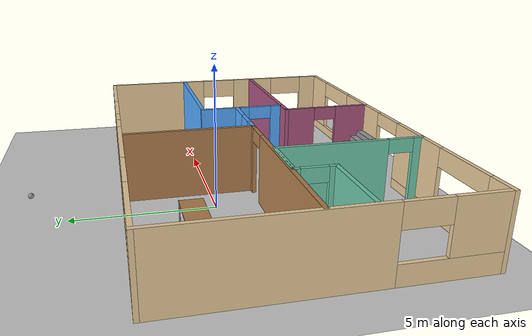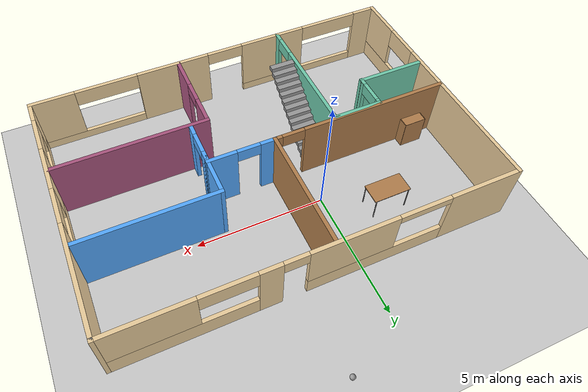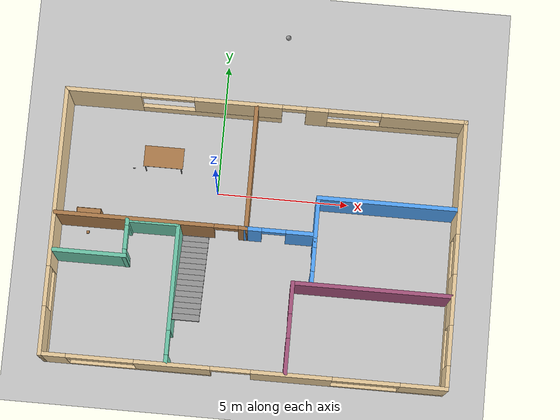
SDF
<sdf version="1.6">
 <world name="default">
  <model name="ground_plane">
   <static>1</static>
   <link name="link">
    <collision name="collision">
     <geometry><plane><normal>0 0 1</normal><size>100 100</size></plane></geometry>
     <surface>
      <contact><collide_bitmask>65535</collide_bitmask></contact>
      <friction><ode><mu>100</mu><mu2>50</mu2></ode></friction>
     </surface>
    </collision>
    <visual name="visual">
     <cast_shadows>0</cast_shadows>
     <geometry><plane><normal>0 0 1</normal><size>100 100</size></plane></geometry>
     <material>
      <script><uri>file://media/materials/scripts/gazebo.material</uri><name>Gazebo/Grey</name></script>
     </material>
    </visual>
   </link>
  </model>
  <model name="MyBuilding">
   <pose>1.58731 -1.90203 0 0 -0 0</pose>
   <link name="Stairs_0">
    <visual name="Stairs_0_Visual_0">
     <pose>-2.26321 0.057041 0.083333 0 -0 0</pose>
     <geometry><box><size>1 0.233333 0.166667</size></box></geometry>
     <material>
      <script><uri>file://media/materials/scripts/gazebo.material</uri><name>Gazebo/Grey</name></script>
      <ambient>1 1 1 1</ambient>
     </material>
     <meta><layer>0</layer></meta>
    </visual>
    <collision name="Stairs_0_Collision_0">
     <geometry><box><size>1 0.233333 0.166667</size></box></geometry>
     <pose>-2.26321 0.057041 0.083333 0 -0 0</pose>
    </collision>
    <visual name="Stairs_0_Visual_1">
     <pose>-2.26321 -0.176293 0.25 0 -0 0</pose>
     <geometry><box><size>1 0.233333 0.166667</size></box></geometry>
     <material>
      <script><uri>file://media/materials/scripts/gazebo.material</uri><name>Gazebo/Grey</name></script>
      <ambient>1 1 1 1</ambient>
     </material>
     <meta><layer>0</layer></meta>
    </visual>
    <collision name="Stairs_0_Collision_1">
     <geometry><box><size>1 0.233333 0.166667</size></box></geometry>
     <pose>-2.26321 -0.176293 0.25 0 -0 0</pose>
    </collision>
    <visual name="Stairs_0_Visual_2">
     <pose>-2.26321 -0.409626 0.416667 0 -0 0</pose>
     <geometry><box><size>1 0.233333 0.166667</size></box></geometry>
     <material>
      <script><uri>file://media/materials/scripts/gazebo.material</uri><name>Gazebo/Grey</name></script>
      <ambient>1 1 1 1</ambient>
     </material>
     <meta><layer>0</layer></meta>
    </visual>
    <collision name="Stairs_0_Collision_2">
     <geometry><box><size>1 0.233333 0.166667</size></box></geometry>
     <pose>-2.26321 -0.409626 0.416667 0 -0 0</pose>
    </collision>
    <visual name="Stairs_0_Visual_3">
     <pose>-2.26321 -0.642959 0.583333 0 -0 0</pose>
     <geometry><box><size>1 0.233333 0.166667</size></box></geometry>
     <material>
      <script><uri>file://media/materials/scripts/gazebo.material</uri><name>Gazebo/Grey</name></script>
      <ambient>1 1 1 1</ambient>
     </material>
     <meta><layer>0</layer></meta>
    </visual>
    <collision name="Stairs_0_Collision_3">
     <geometry><box><size>1 0.233333 0.166667</size></box></geometry>
     <pose>-2.26321 -0.642959 0.583333 0 -0 0</pose>
    </collision>
    <visual name="Stairs_0_Visual_4">
     <pose>-2.26321 -0.876293 0.75 0 -0 0</pose>
     <geometry><box><size>1 0.233333 0.166667</size></box></geometry>
     <material>
      <script><uri>file://media/materials/scripts/gazebo.material</uri><name>Gazebo/Grey</name></script>
      <ambient>1 1 1 1</ambient>
     </material>
     <meta><layer>0</layer></meta>
    </visual>
    <collision name="Stairs_0_Collision_4">
     <geometry><box><size>1 0.233333 0.166667</size></box></geometry>
     <pose>-2.26321 -0.876293 0.75 0 -0 0</pose>
    </collision>
    <visual name="Stairs_0_Visual_5">
     <pose>-2.26321 -1.10963 0.916667 0 -0 0</pose>
     <geometry><box><size>1 0.233333 0.166667</size></box></geometry>
     <material>
      <script><uri>file://media/materials/scripts/gazebo.material</uri><name>Gazebo/Grey</name></script>
      <ambient>1 1 1 1</ambient>
     </material>
     <meta><layer>0</layer></meta>
    </visual>
    <collision name="Stairs_0_Collision_5">
     <geometry><box><size>1 0.233333 0.166667</size></box></geometry>
     <pose>-2.26321 -1.10963 0.916667 0 -0 0</pose>
    </collision>
    <visual name="Stairs_0_Visual_6">
     <pose>-2.26321 -1.34296 1.08333 0 -0 0</pose>
     <geometry><box><size>1 0.233333 0.166667</size></box></geometry>
     <material>
      <script><uri>file://media/materials/scripts/gazebo.material</uri><name>Gazebo/Grey</name></script>
      <ambient>1 1 1 1</ambient>
     </material>
     <meta><layer>0</layer></meta>
    </visual>
    <collision name="Stairs_0_Collision_6">
     <geometry><box><size>1 0.233333 0.166667</size></box></geometry>
     <pose>-2.26321 -1.34296 1.08333 0 -0 0</pose>
    </collision>
    <visual name="Stairs_0_Visual_7">
     <pose>-2.26321 -1.57629 1.25 0 -0 0</pose>
     <geometry><box><size>1 0.233333 0.166667</size></box></geometry>
     <material>
      <script><uri>file://media/materials/scripts/gazebo.material</uri><name>Gazebo/Grey</name></script>
      <ambient>1 1 1 1</ambient>
     </material>
     <meta><layer>0</layer></meta>
    </visual>
    <collision name="Stairs_0_Collision_7">
     <geometry><box><size>1 0.233333 0.166667</size></box></geometry>
     <pose>-2.26321 -1.57629 1.25 0 -0 0</pose>
    </collision>
    <visual name="Stairs_0_Visual_8">
     <pose>-2.26321 -1.80963 1.41667 0 -0 0</pose>
     <geometry><box><size>1 0.233333 0.166667</size></box></geometry>
     <material>
      <script><uri>file://media/materials/scripts/gazebo.material</uri><name>Gazebo/Grey</name></script>
      <ambient>1 1 1 1</ambient>
     </material>
     <meta><layer>0</layer></meta>
    </visual>
    <collision name="Stairs_0_Collision_8">
     <geometry><box><size>1 0.233333 0.166667</size></box></geometry>
     <pose>-2.26321 -1.80963 1.41667 0 -0 0</pose>
    </collision>
    <visual name="Stairs_0_Visual_9">
     <pose>-2.26321 -2.04296 1.58333 0 -0 0</pose>
     <geometry><box><size>1 0.233333 0.166667</size></box></geometry>
     <material>
      <script><uri>file://media/materials/scripts/gazebo.material</uri><name>Gazebo/Grey</name></script>
      <ambient>1 1 1 1</ambient>
     </material>
     <meta><layer>0</layer></meta>
    </visual>
    <collision name="Stairs_0_Collision_9">
     <geometry><box><size>1 0.233333 0.166667</size></box></geometry>
     <pose>-2.26321 -2.04296 1.58333 0 -0 0</pose>
    </collision>
    <visual name="Stairs_0_Visual_10">
     <pose>-2.26321 -2.27629 1.75 0 -0 0</pose>
     <geometry><box><size>1 0.233333 0.166667</size></box></geometry>
     <material>
      <script><uri>file://media/materials/scripts/gazebo.material</uri><name>Gazebo/Grey</name></script>
      <ambient>1 1 1 1</ambient>
     </material>
     <meta><layer>0</layer></meta>
    </visual>
    <collision name="Stairs_0_Collision_10">
     <geometry><box><size>1 0.233333 0.166667</size></box></geometry>
     <pose>-2.26321 -2.27629 1.75 0 -0 0</pose>
    </collision>
    <visual name="Stairs_0_Visual_11">
     <pose>-2.26321 -2.50963 1.91667 0 -0 0</pose>
     <geometry><box><size>1 0.233333 0.166667</size></box></geometry>
     <material>
      <script><uri>file://media/materials/scripts/gazebo.material</uri><name>Gazebo/Grey</name></script>
      <ambient>1 1 1 1</ambient>
     </material>
     <meta><layer>0</layer></meta>
    </visual>
    <collision name="Stairs_0_Collision_11">
     <geometry><box><size>1 0.233333 0.166667</size></box></geometry>
     <pose>-2.26321 -2.50963 1.91667 0 -0 0</pose>
    </collision>
    <visual name="Stairs_0_Visual_12">
     <pose>-2.26321 -2.74296 2.08333 0 -0 0</pose>
     <geometry><box><size>1 0.233333 0.166667</size></box></geometry>
     <material>
      <script><uri>file://media/materials/scripts/gazebo.material</uri><name>Gazebo/Grey</name></script>
      <ambient>1 1 1 1</ambient>
     </material>
     <meta><layer>0</layer></meta>
    </visual>
    <collision name="Stairs_0_Collision_12">
     <geometry><box><size>1 0.233333 0.166667</size></box></geometry>
     <pose>-2.26321 -2.74296 2.08333 0 -0 0</pose>
    </collision>
    <visual name="Stairs_0_Visual_13">
     <pose>-2.26321 -2.97629 2.25 0 -0 0</pose>
     <geometry><box><size>1 0.233333 0.166667</size></box></geometry>
     <material>
      <script><uri>file://media/materials/scripts/gazebo.material</uri><name>Gazebo/Grey</name></script>
      <ambient>1 1 1 1</ambient>
     </material>
     <meta><layer>0</layer></meta>
    </visual>
    <collision name="Stairs_0_Collision_13">
     <geometry><box><size>1 0.233333 0.166667</size></box></geometry>
     <pose>-2.26321 -2.97629 2.25 0 -0 0</pose>
    </collision>
    <visual name="Stairs_0_Visual_14">
     <pose>-2.26321 -3.20963 2.41667 0 -0 0</pose>
     <geometry><box><size>1 0.233333 0.166667</size></box></geometry>
     <material>
      <script><uri>file://media/materials/scripts/gazebo.material</uri><name>Gazebo/Grey</name></script>
      <ambient>1 1 1 1</ambient>
     </material>
     <meta><layer>0</layer></meta>
    </visual>
    <collision name="Stairs_0_Collision_14">
     <geometry><box><size>1 0.233333 0.166667</size></box></geometry>
     <pose>-2.26321 -3.20963 2.41667 0 -0 0</pose>
    </collision>
   </link>
   <link name="Wall_24">
    <pose>-7.5 0 0 0 0 -1.5708</pose>
    <visual name="Wall_24_Visual_0">
     <pose>-1.66537 0 1.25 0 -0 0</pose>
     <geometry><box><size>6.81926 0.15 2.5</size></box></geometry>
     <material>
      <script><uri>file://media/materials/scripts/gazebo.material</uri><name>Gazebo/Grey</name></script>
      <ambient>0.921569 0.807843 0.615686 1</ambient>
     </material>
     <meta><layer>0</layer></meta>
    </visual>
    <collision name="Wall_24_Collision_0">
     <geometry><box><size>6.81926 0.15 2.5</size></box></geometry>
     <pose>-1.66537 0 1.25 0 -0 0</pose>
    </collision>
    <visual name="Wall_24_Visual_1">
     <pose>3.40963 0 0.35 0 -0 0</pose>
     <geometry><box><size>3.33074 0.15 0.7</size></box></geometry>
     <material>
      <script><uri>file://media/materials/scripts/gazebo.material</uri><name>Gazebo/Grey</name></script>
      <ambient>0.921569 0.807843 0.615686 1</ambient>
     </material>
     <meta><layer>0</layer></meta>
    </visual>
    <collision name="Wall_24_Collision_1">
     <geometry><box><size>3.33074 0.15 0.7</size></box></geometry>
     <pose>3.40963 0 0.35 0 -0 0</pose>
    </collision>
    <visual name="Wall_24_Visual_2">
     <pose>4.15963 0 1.6 0 -0 0</pose>
     <geometry><box><size>1.83074 0.15 1.8</size></box></geometry>
     <material>
      <script><uri>file://media/materials/scripts/gazebo.material</uri><name>Gazebo/Grey</name></script>
      <ambient>0.921569 0.807843 0.615686 1</ambient>
     </material>
     <meta><layer>0</layer></meta>
    </visual>
    <collision name="Wall_24_Collision_2">
     <geometry><box><size>1.83074 0.15 1.8</size></box></geometry>
     <pose>4.15963 0 1.6 0 -0 0</pose>
    </collision>
    <visual name="Wall_24_Visual_3">
     <pose>2.49426 0 2.1 0 -0 0</pose>
     <geometry><box><size>1.5 0.15 0.8</size></box></geometry>
     <material>
      <script><uri>file://media/materials/scripts/gazebo.material</uri><name>Gazebo/Grey</name></script>
      <ambient>0.921569 0.807843 0.615686 1</ambient>
     </material>
     <meta><layer>0</layer></meta>
    </visual>
    <collision name="Wall_24_Collision_3">
     <geometry><box><size>1.5 0.15 0.8</size></box></geometry>
     <pose>2.49426 0 2.1 0 -0 0</pose>
    </collision>
   </link>
   <link name="Wall_25">
    <pose>0 -5 0 0 -0 0</pose>
    <visual name="Wall_25_Visual_0">
     <pose>-7.05279 0 1.25 0 -0 0</pose>
     <geometry><box><size>1.04517 0.15 2.5</size></box></geometry>
     <material>
      <script><uri>file://media/materials/scripts/gazebo.material</uri><name>Gazebo/Grey</name></script>
      <ambient>0.921569 0.807843 0.615686 1</ambient>
     </material>
     <meta><layer>0</layer></meta>
    </visual>
    <collision name="Wall_25_Collision_0">
     <geometry><box><size>1.04517 0.15 2.5</size></box></geometry>
     <pose>-7.05279 0 1.25 0 -0 0</pose>
    </collision>
    <visual name="Wall_25_Visual_1">
     <pose>1.78979 0 1.25 0 -0 0</pose>
     <geometry><box><size>3 0.15 2.5</size></box></geometry>
     <material>
      <script><uri>file://media/materials/scripts/gazebo.material</uri><name>Gazebo/Grey</name></script>
      <ambient>0.921569 0.807843 0.615686 1</ambient>
     </material>
     <meta><layer>0</layer></meta>
    </visual>
    <collision name="Wall_25_Collision_1">
     <geometry><box><size>3 0.15 2.5</size></box></geometry>
     <pose>1.78979 0 1.25 0 -0 0</pose>
    </collision>
    <visual name="Wall_25_Visual_2">
     <pose>-3.87021 0 0.175 0 -0 0</pose>
     <geometry><box><size>5.32 0.15 0.35</size></box></geometry>
     <material>
      <script><uri>file://media/materials/scripts/gazebo.material</uri><name>Gazebo/Grey</name></script>
      <ambient>0.921569 0.807843 0.615686 1</ambient>
     </material>
     <meta><layer>0</layer></meta>
    </visual>
    <collision name="Wall_25_Collision_2">
     <geometry><box><size>5.32 0.15 0.35</size></box></geometry>
     <pose>-3.87021 0 0.175 0 -0 0</pose>
    </collision>
    <visual name="Wall_25_Visual_3">
     <pose>5.43258 0 0.175 0 -0 0</pose>
     <geometry><box><size>4.28558 0.15 0.35</size></box></geometry>
     <material>
      <script><uri>file://media/materials/scripts/gazebo.material</uri><name>Gazebo/Grey</name></script>
      <ambient>0.921569 0.807843 0.615686 1</ambient>
     </material>
     <meta><layer>0</layer></meta>
    </visual>
    <collision name="Wall_25_Collision_3">
     <geometry><box><size>4.28558 0.15 0.35</size></box></geometry>
     <pose>5.43258 0 0.175 0 -0 0</pose>
    </collision>
    <visual name="Wall_25_Visual_4">
     <pose>-2.62021 0 1.425 0 -0 0</pose>
     <geometry><box><size>2.82 0.15 2.15</size></box></geometry>
     <material>
      <script><uri>file://media/materials/scripts/gazebo.material</uri><name>Gazebo/Grey</name></script>
      <ambient>0.921569 0.807843 0.615686 1</ambient>
     </material>
     <meta><layer>0</layer></meta>
    </visual>
    <collision name="Wall_25_Collision_4">
     <geometry><box><size>2.82 0.15 2.15</size></box></geometry>
     <pose>-2.62021 0 1.425 0 -0 0</pose>
    </collision>
    <visual name="Wall_25_Visual_5">
     <pose>-2.62021 0 1.425 0 -0 0</pose>
     <geometry><box><size>2.82 0.15 2.15</size></box></geometry>
     <material>
      <script><uri>file://media/materials/scripts/gazebo.material</uri><name>Gazebo/Grey</name></script>
      <ambient>0.921569 0.807843 0.615686 1</ambient>
     </material>
     <meta><layer>0</layer></meta>
    </visual>
    <collision name="Wall_25_Collision_5">
     <geometry><box><size>2.82 0.15 2.15</size></box></geometry>
     <pose>-2.62021 0 1.425 0 -0 0</pose>
    </collision>
    <visual name="Wall_25_Visual_6">
     <pose>6.68258 0 1.425 0 -0 0</pose>
     <geometry><box><size>1.78558 0.15 2.15</size></box></geometry>
     <material>
      <script><uri>file://media/materials/scripts/gazebo.material</uri><name>Gazebo/Grey</name></script>
      <ambient>0.921569 0.807843 0.615686 1</ambient>
     </material>
     <meta><layer>0</layer></meta>
    </visual>
    <collision name="Wall_25_Collision_6">
     <geometry><box><size>1.78558 0.15 2.15</size></box></geometry>
     <pose>6.68258 0 1.425 0 -0 0</pose>
    </collision>
    <visual name="Wall_25_Visual_7">
     <pose>-5.28021 0 2.175 0 -0 0</pose>
     <geometry><box><size>2.5 0.15 0.65</size></box></geometry>
     <material>
      <script><uri>file://media/materials/scripts/gazebo.material</uri><name>Gazebo/Grey</name></script>
      <ambient>0.921569 0.807843 0.615686 1</ambient>
     </material>
     <meta><layer>0</layer></meta>
    </visual>
    <collision name="Wall_25_Collision_7">
     <geometry><box><size>2.5 0.15 0.65</size></box></geometry>
     <pose>-5.28021 0 2.175 0 -0 0</pose>
    </collision>
    <visual name="Wall_25_Visual_8">
     <pose>4.53979 0 2.175 0 -0 0</pose>
     <geometry><box><size>2.5 0.15 0.65</size></box></geometry>
     <material>
      <script><uri>file://media/materials/scripts/gazebo.material</uri><name>Gazebo/Grey</name></script>
      <ambient>0.921569 0.807843 0.615686 1</ambient>
     </material>
     <meta><layer>0</layer></meta>
    </visual>
    <collision name="Wall_25_Collision_8">
     <geometry><box><size>2.5 0.15 0.65</size></box></geometry>
     <pose>4.53979 0 2.175 0 -0 0</pose>
    </collision>
    <visual name="Wall_25_Visual_9">
     <pose>-0.460207 0 2.25 0 -0 0</pose>
     <geometry><box><size>1.5 0.15 0.5</size></box></geometry>
     <material>
      <script><uri>file://media/materials/scripts/gazebo.material</uri><name>Gazebo/Grey</name></script>
      <ambient>0.921569 0.807843 0.615686 1</ambient>
     </material>
     <meta><layer>0</layer></meta>
    </visual>
    <collision name="Wall_25_Collision_9">
     <geometry><box><size>1.5 0.15 0.5</size></box></geometry>
     <pose>-0.460207 0 2.25 0 -0 0</pose>
    </collision>
    <visual name="Wall_25_Visual_10">
     <pose>-0.460207 0 2.25 0 -0 0</pose>
     <geometry><box><size>1.5 0.15 0.5</size></box></geometry>
     <material>
      <script><uri>file://media/materials/scripts/gazebo.material</uri><name>Gazebo/Grey</name></script>
      <ambient>0.921569 0.807843 0.615686 1</ambient>
     </material>
     <meta><layer>0</layer></meta>
    </visual>
    <collision name="Wall_25_Collision_10">
     <geometry><box><size>1.5 0.15 0.5</size></box></geometry>
     <pose>-0.460207 0 2.25 0 -0 0</pose>
    </collision>
   </link>
   <link name="Wall_28">
    <pose>-2.855 -2.417 0 0 -0 1.5708</pose>
    <visual name="Wall_28_Visual_0">
     <pose>-2.42597 0 1.25 0 -0 0</pose>
     <geometry><box><size>0.39806 0.15 2.5</size></box></geometry>
     <material>
      <script><uri>file://media/materials/scripts/gazebo.material</uri><name>Gazebo/Grey</name></script>
      <ambient>0.435294 0.796078 0.67451 1</ambient>
     </material>
     <meta><layer>0</layer></meta>
    </visual>
    <collision name="Wall_28_Collision_0">
     <geometry><box><size>0.39806 0.15 2.5</size></box></geometry>
     <pose>-2.42597 0 1.25 0 -0 0</pose>
    </collision>
    <visual name="Wall_28_Visual_1">
     <pose>0.64903 0 1.25 0 -0 0</pose>
     <geometry><box><size>3.95194 0.15 2.5</size></box></geometry>
     <material>
      <script><uri>file://media/materials/scripts/gazebo.material</uri><name>Gazebo/Grey</name></script>
      <ambient>0.435294 0.796078 0.67451 1</ambient>
     </material>
     <meta><layer>0</layer></meta>
    </visual>
    <collision name="Wall_28_Collision_1">
     <geometry><box><size>3.95194 0.15 2.5</size></box></geometry>
     <pose>0.64903 0 1.25 0 -0 0</pose>
    </collision>
    <visual name="Wall_28_Visual_2">
     <pose>-1.77694 0 2.25 0 -0 0</pose>
     <geometry><box><size>0.9 0.15 0.5</size></box></geometry>
     <material>
      <script><uri>file://media/materials/scripts/gazebo.material</uri><name>Gazebo/Grey</name></script>
      <ambient>0.435294 0.796078 0.67451 1</ambient>
     </material>
     <meta><layer>0</layer></meta>
    </visual>
    <collision name="Wall_28_Collision_2">
     <geometry><box><size>0.9 0.15 0.5</size></box></geometry>
     <pose>-1.77694 0 2.25 0 -0 0</pose>
    </collision>
   </link>
   <link name="Wall_3">
    <pose>0 5 0 0 -0 0</pose>
    <visual name="Wall_3_Visual_0">
     <pose>-6.1376 0 1.25 0 -0 0</pose>
     <geometry><box><size>2.87479 0.15 2.5</size></box></geometry>
     <material>
      <script><uri>file://media/materials/scripts/gazebo.material</uri><name>Gazebo/Grey</name></script>
      <ambient>0.921569 0.807843 0.615686 1</ambient>
     </material>
     <meta><layer>0</layer></meta>
    </visual>
    <collision name="Wall_3_Collision_0">
     <geometry><box><size>2.87479 0.15 2.5</size></box></geometry>
     <pose>-6.1376 0 1.25 0 -0 0</pose>
    </collision>
    <visual name="Wall_3_Visual_1">
     <pose>1.92479 0 1.25 0 -0 0</pose>
     <geometry><box><size>0.83 0.15 2.5</size></box></geometry>
     <material>
      <script><uri>file://media/materials/scripts/gazebo.material</uri><name>Gazebo/Grey</name></script>
      <ambient>0.921569 0.807843 0.615686 1</ambient>
     </material>
     <meta><layer>0</layer></meta>
    </visual>
    <collision name="Wall_3_Collision_1">
     <geometry><box><size>0.83 0.15 2.5</size></box></geometry>
     <pose>1.92479 0 1.25 0 -0 0</pose>
    </collision>
    <visual name="Wall_3_Visual_2">
     <pose>-2.04521 0 0.35 0 -0 0</pose>
     <geometry><box><size>5.31 0.15 0.7</size></box></geometry>
     <material>
      <script><uri>file://media/materials/scripts/gazebo.material</uri><name>Gazebo/Grey</name></script>
      <ambient>0.921569 0.807843 0.615686 1</ambient>
     </material>
     <meta><layer>0</layer></meta>
    </visual>
    <collision name="Wall_3_Collision_2">
     <geometry><box><size>5.31 0.15 0.7</size></box></geometry>
     <pose>-2.04521 0 0.35 0 -0 0</pose>
    </collision>
    <visual name="Wall_3_Visual_3">
     <pose>4.9574 0 0.4 0 -0 0</pose>
     <geometry><box><size>5.23521 0.15 0.8</size></box></geometry>
     <material>
      <script><uri>file://media/materials/scripts/gazebo.material</uri><name>Gazebo/Grey</name></script>
      <ambient>0.921569 0.807843 0.615686 1</ambient>
     </material>
     <meta><layer>0</layer></meta>
    </visual>
    <collision name="Wall_3_Collision_3">
     <geometry><box><size>5.23521 0.15 0.8</size></box></geometry>
     <pose>4.9574 0 0.4 0 -0 0</pose>
    </collision>
    <visual name="Wall_3_Visual_4">
     <pose>-1.04521 0 1.6 0 -0 0</pose>
     <geometry><box><size>3.31 0.15 1.8</size></box></geometry>
     <material>
      <script><uri>file://media/materials/scripts/gazebo.material</uri><name>Gazebo/Grey</name></script>
      <ambient>0.921569 0.807843 0.615686 1</ambient>
     </material>
     <meta><layer>0</layer></meta>
    </visual>
    <collision name="Wall_3_Collision_4">
     <geometry><box><size>3.31 0.15 1.8</size></box></geometry>
     <pose>-1.04521 0 1.6 0 -0 0</pose>
    </collision>
    <visual name="Wall_3_Visual_5">
     <pose>5.9574 0 1.65 0 -0 0</pose>
     <geometry><box><size>3.23521 0.15 1.7</size></box></geometry>
     <material>
      <script><uri>file://media/materials/scripts/gazebo.material</uri><name>Gazebo/Grey</name></script>
      <ambient>0.921569 0.807843 0.615686 1</ambient>
     </material>
     <meta><layer>0</layer></meta>
    </visual>
    <collision name="Wall_3_Collision_5">
     <geometry><box><size>3.23521 0.15 1.7</size></box></geometry>
     <pose>5.9574 0 1.65 0 -0 0</pose>
    </collision>
    <visual name="Wall_3_Visual_6">
     <pose>3.33979 0 2.15 0 -0 0</pose>
     <geometry><box><size>2 0.15 0.7</size></box></geometry>
     <material>
      <script><uri>file://media/materials/scripts/gazebo.material</uri><name>Gazebo/Grey</name></script>
      <ambient>0.921569 0.807843 0.615686 1</ambient>
     </material>
     <meta><layer>0</layer></meta>
    </visual>
    <collision name="Wall_3_Collision_6">
     <geometry><box><size>2 0.15 0.7</size></box></geometry>
     <pose>3.33979 0 2.15 0 -0 0</pose>
    </collision>
    <visual name="Wall_3_Visual_7">
     <pose>1.05979 0 2.25 0 -0 0</pose>
     <geometry><box><size>0.9 0.15 0.5</size></box></geometry>
     <material>
      <script><uri>file://media/materials/scripts/gazebo.material</uri><name>Gazebo/Grey</name></script>
      <ambient>0.921569 0.807843 0.615686 1</ambient>
     </material>
     <meta><layer>0</layer></meta>
    </visual>
    <collision name="Wall_3_Collision_7">
     <geometry><box><size>0.9 0.15 0.5</size></box></geometry>
     <pose>1.05979 0 2.25 0 -0 0</pose>
    </collision>
    <visual name="Wall_3_Visual_8">
     <pose>-3.70021 0 2.35 0 -0 0</pose>
     <geometry><box><size>2 0.15 0.3</size></box></geometry>
     <material>
      <script><uri>file://media/materials/scripts/gazebo.material</uri><name>Gazebo/Grey</name></script>
      <ambient>0.921569 0.807843 0.615686 1</ambient>
     </material>
     <meta><layer>0</layer></meta>
    </visual>
    <collision name="Wall_3_Collision_8">
     <geometry><box><size>2 0.15 0.3</size></box></geometry>
     <pose>-3.70021 0 2.35 0 -0 0</pose>
    </collision>
   </link>
   <link name="Wall_33">
    <collision name="Wall_33_Collision">
     <geometry><box><size>6 0.15 2.5</size></box></geometry>
     <pose>0 0 1.25 0 -0 0</pose>
    </collision>
    <visual name="Wall_33_Visual">
     <pose>0 0 1.25 0 -0 0</pose>
     <geometry><box><size>6 0.15 2.5</size></box></geometry>
     <material>
      <script><uri>file://media/materials/scripts/gazebo.material</uri><name>Gazebo/Grey</name></script>
      <ambient>0.666667 0.333333 0.498039 1</ambient>
     </material>
     <meta><layer>0</layer></meta>
    </visual>
    <pose>4.48282 -1.58892 0 0 -0 0</pose>
   </link>
   <link name="Wall_36">
    <pose>2.24489 -0.724368 0 0 0 -1.5708</pose>
    <visual name="Wall_36_Visual_0">
     <pose>-0.697553 0 1.25 0 -0 0</pose>
     <geometry><box><size>0.354895 0.15 2.5</size></box></geometry>
     <material>
      <script><uri>file://media/materials/scripts/gazebo.material</uri><name>Gazebo/Grey</name></script>
      <ambient>0.333333 0.666667 1 1</ambient>
     </material>
     <meta><layer>0</layer></meta>
    </visual>
    <collision name="Wall_36_Collision_0">
     <geometry><box><size>0.354895 0.15 2.5</size></box></geometry>
     <pose>-0.697553 0 1.25 0 -0 0</pose>
    </collision>
    <visual name="Wall_36_Visual_1">
     <pose>0.627447 0 1.25 0 -0 0</pose>
     <geometry><box><size>0.495105 0.15 2.5</size></box></geometry>
     <material>
      <script><uri>file://media/materials/scripts/gazebo.material</uri><name>Gazebo/Grey</name></script>
      <ambient>0.333333 0.666667 1 1</ambient>
     </material>
     <meta><layer>0</layer></meta>
    </visual>
    <collision name="Wall_36_Collision_1">
     <geometry><box><size>0.495105 0.15 2.5</size></box></geometry>
     <pose>0.627447 0 1.25 0 -0 0</pose>
    </collision>
    <visual name="Wall_36_Visual_2">
     <pose>-0.070105 0 2.25 0 -0 0</pose>
     <geometry><box><size>0.9 0.15 0.5</size></box></geometry>
     <material>
      <script><uri>file://media/materials/scripts/gazebo.material</uri><name>Gazebo/Grey</name></script>
      <ambient>0.333333 0.666667 1 1</ambient>
     </material>
     <meta><layer>0</layer></meta>
    </visual>
    <collision name="Wall_36_Collision_2">
     <geometry><box><size>0.9 0.15 0.5</size></box></geometry>
     <pose>-0.070105 0 2.25 0 -0 0</pose>
    </collision>
   </link>
   <link name="Wall_38">
    <collision name="Wall_38_Collision">
     <geometry><box><size>1.75 0.15 2.5</size></box></geometry>
     <pose>0 0 1.25 0 -0 0</pose>
    </collision>
    <visual name="Wall_38_Visual">
     <pose>0 0 1.25 0 -0 0</pose>
     <geometry><box><size>1.75 0.15 2.5</size></box></geometry>
     <material>
      <script><uri>file://media/materials/scripts/gazebo.material</uri><name>Gazebo/Grey</name></script>
      <ambient>0.333333 0.666667 1 1</ambient>
     </material>
     <meta><layer>0</layer></meta>
    </visual>
    <pose>2.24489 0.875632 0 0 -0 1.5708</pose>
   </link>
   <link name="Wall_39">
    <collision name="Wall_39_Collision">
     <geometry><box><size>5.25 0.15 2.5</size></box></geometry>
     <pose>0 0 1.25 0 -0 0</pose>
    </collision>
    <visual name="Wall_39_Visual">
     <pose>0 0 1.25 0 -0 0</pose>
     <geometry><box><size>5.25 0.15 2.5</size></box></geometry>
     <material>
      <script><uri>file://media/materials/scripts/gazebo.material</uri><name>Gazebo/Grey</name></script>
      <ambient>0.333333 0.666667 1 1</ambient>
     </material>
     <meta><layer>0</layer></meta>
    </visual>
    <pose>4.79489 1.67563 0 0 -0 0</pose>
   </link>
   <link name="Wall_43">
    <pose>1.55782 -3.26392 0 0 0 -1.5708</pose>
    <visual name="Wall_43_Visual_0">
     <pose>-1.13483 0 1.25 0 -0 0</pose>
     <geometry><box><size>1.23034 0.15 2.5</size></box></geometry>
     <material>
      <script><uri>file://media/materials/scripts/gazebo.material</uri><name>Gazebo/Grey</name></script>
      <ambient>0.666667 0.333333 0.498039 1</ambient>
     </material>
     <meta><layer>0</layer></meta>
    </visual>
    <collision name="Wall_43_Collision_0">
     <geometry><box><size>1.23034 0.15 2.5</size></box></geometry>
     <pose>-1.13483 0 1.25 0 -0 0</pose>
    </collision>
    <visual name="Wall_43_Visual_1">
     <pose>1.06517 0 1.25 0 -0 0</pose>
     <geometry><box><size>1.36966 0.15 2.5</size></box></geometry>
     <material>
      <script><uri>file://media/materials/scripts/gazebo.material</uri><name>Gazebo/Grey</name></script>
      <ambient>0.666667 0.333333 0.498039 1</ambient>
     </material>
     <meta><layer>0</layer></meta>
    </visual>
    <collision name="Wall_43_Collision_1">
     <geometry><box><size>1.36966 0.15 2.5</size></box></geometry>
     <pose>1.06517 0 1.25 0 -0 0</pose>
    </collision>
    <visual name="Wall_43_Visual_2">
     <pose>-0.069658 0 2.25 0 -0 0</pose>
     <geometry><box><size>0.9 0.15 0.5</size></box></geometry>
     <material>
      <script><uri>file://media/materials/scripts/gazebo.material</uri><name>Gazebo/Grey</name></script>
      <ambient>0.666667 0.333333 0.498039 1</ambient>
     </material>
     <meta><layer>0</layer></meta>
    </visual>
    <collision name="Wall_43_Collision_2">
     <geometry><box><size>0.9 0.15 0.5</size></box></geometry>
     <pose>-0.069658 0 2.25 0 -0 0</pose>
    </collision>
   </link>
   <link name="Wall_47">
    <collision name="Wall_47_Collision">
     <geometry><box><size>2.78025 0.15 2.5</size></box></geometry>
     <pose>0 0 1.25 0 -0 0</pose>
    </collision>
    <visual name="Wall_47_Visual">
     <pose>0 0 1.25 0 -0 0</pose>
     <geometry><box><size>2.78025 0.15 2.5</size></box></geometry>
     <material>
      <script><uri>file://media/materials/scripts/gazebo.material</uri><name>Gazebo/Grey</name></script>
      <ambient>0.435294 0.796078 0.67451 1</ambient>
     </material>
     <meta><layer>0</layer></meta>
    </visual>
    <pose>-6.0579 -1.1166 0 0 -0 0</pose>
   </link>
   <link name="Wall_48">
    <pose>-4.75795 -0.45686 0 0 -0 1.57087</pose>
    <visual name="Wall_48_Visual_0">
     <pose>-0.585551 0 1.25 0 -0 0</pose>
     <geometry><box><size>0.328897 0.15 2.5</size></box></geometry>
     <material>
      <script><uri>file://media/materials/scripts/gazebo.material</uri><name>Gazebo/Grey</name></script>
      <ambient>0.435294 0.796078 0.67451 1</ambient>
     </material>
     <meta><layer>0</layer></meta>
    </visual>
    <collision name="Wall_48_Collision_0">
     <geometry><box><size>0.328897 0.15 2.5</size></box></geometry>
     <pose>-0.585551 0 1.25 0 -0 0</pose>
    </collision>
    <visual name="Wall_48_Visual_1">
     <pose>0.614449 0 1.25 0 -0 0</pose>
     <geometry><box><size>0.271103 0.15 2.5</size></box></geometry>
     <material>
      <script><uri>file://media/materials/scripts/gazebo.material</uri><name>Gazebo/Grey</name></script>
      <ambient>0.435294 0.796078 0.67451 1</ambient>
     </material>
     <meta><layer>0</layer></meta>
    </visual>
    <collision name="Wall_48_Collision_1">
     <geometry><box><size>0.271103 0.15 2.5</size></box></geometry>
     <pose>0.614449 0 1.25 0 -0 0</pose>
    </collision>
    <visual name="Wall_48_Visual_2">
     <pose>0.028897 0 2.25 0 -0 0</pose>
     <geometry><box><size>0.9 0.15 0.5</size></box></geometry>
     <material>
      <script><uri>file://media/materials/scripts/gazebo.material</uri><name>Gazebo/Grey</name></script>
      <ambient>0.435294 0.796078 0.67451 1</ambient>
     </material>
     <meta><layer>0</layer></meta>
    </visual>
    <collision name="Wall_48_Collision_2">
     <geometry><box><size>0.9 0.15 0.5</size></box></geometry>
     <pose>0.028897 0 2.25 0 -0 0</pose>
    </collision>
   </link>
   <link name="Wall_5">
    <collision name="Wall_5_Collision">
     <geometry><box><size>0.15 0.15 2.5</size></box></geometry>
     <pose>0 0 1.25 0 -0 0</pose>
    </collision>
    <visual name="Wall_5_Visual">
     <pose>0 0 1.25 0 -0 0</pose>
     <geometry><box><size>0.15 0.15 2.5</size></box></geometry>
     <material>
      <script><uri>file://media/materials/scripts/gazebo.material</uri><name>Gazebo/Grey</name></script>
      <ambient>1 1 1 1</ambient>
     </material>
     <meta><layer>0</layer></meta>
    </visual>
    <pose>7.5 5 0 0 -0 0</pose>
   </link>
   <link name="Wall_55">
    <pose>-3.901 0.285 0 0 -0 0</pose>
    <visual name="Wall_55_Visual_0">
     <pose>-0.629891 0 1.25 0 -0 0</pose>
     <geometry><box><size>5.99022 0.15 2.5</size></box></geometry>
     <material>
      <script><uri>file://media/materials/scripts/gazebo.material</uri><name>Gazebo/Wood</name></script>
      <ambient>1 1 1 1</ambient>
     </material>
     <meta><layer>0</layer></meta>
    </visual>
    <collision name="Wall_55_Collision_0">
     <geometry><box><size>5.99022 0.15 2.5</size></box></geometry>
     <pose>-0.629891 0 1.25 0 -0 0</pose>
    </collision>
    <visual name="Wall_55_Visual_1">
     <pose>3.44511 0 1.25 0 -0 0</pose>
     <geometry><box><size>0.359783 0.15 2.5</size></box></geometry>
     <material>
      <script><uri>file://media/materials/scripts/gazebo.material</uri><name>Gazebo/Wood</name></script>
      <ambient>1 1 1 1</ambient>
     </material>
     <meta><layer>0</layer></meta>
    </visual>
    <collision name="Wall_55_Collision_1">
     <geometry><box><size>0.359783 0.15 2.5</size></box></geometry>
     <pose>3.44511 0 1.25 0 -0 0</pose>
    </collision>
    <visual name="Wall_55_Visual_2">
     <pose>2.81522 0 2.25 0 -0 0</pose>
     <geometry><box><size>0.9 0.15 0.5</size></box></geometry>
     <material>
      <script><uri>file://media/materials/scripts/gazebo.material</uri><name>Gazebo/Wood</name></script>
      <ambient>1 1 1 1</ambient>
     </material>
     <meta><layer>0</layer></meta>
    </visual>
    <collision name="Wall_55_Collision_2">
     <geometry><box><size>0.9 0.15 0.5</size></box></geometry>
     <pose>2.81522 0 2.25 0 -0 0</pose>
    </collision>
   </link>
   <link name="Wall_56">
    <collision name="Wall_56_Collision">
     <geometry><box><size>4.75 0.15 2.5</size></box></geometry>
     <pose>0 0 1.25 0 -0 0</pose>
    </collision>
    <visual name="Wall_56_Visual">
     <pose>0 0 1.25 0 -0 0</pose>
     <geometry><box><size>4.75 0.15 2.5</size></box></geometry>
     <material>
      <script><uri>file://media/materials/scripts/gazebo.material</uri><name>Gazebo/Wood</name></script>
      <ambient>1 1 1 1</ambient>
     </material>
     <meta><layer>0</layer></meta>
    </visual>
    <pose>-0.351 2.585 0 0 -0 1.5708</pose>
   </link>
   <link name="Wall_58">
    <pose>0.949092 0.285065 0 0 -0 5e-05</pose>
    <visual name="Wall_58_Visual_0">
     <pose>-1.04294 0 1.25 0 -0 0</pose>
     <geometry><box><size>0.664112 0.15 2.5</size></box></geometry>
     <material>
      <script><uri>file://media/materials/scripts/gazebo.material</uri><name>Gazebo/Grey</name></script>
      <ambient>0.333333 0.666667 1 1</ambient>
     </material>
     <meta><layer>0</layer></meta>
    </visual>
    <collision name="Wall_58_Collision_0">
     <geometry><box><size>0.664112 0.15 2.5</size></box></geometry>
     <pose>-1.04294 0 1.25 0 -0 0</pose>
    </collision>
    <visual name="Wall_58_Visual_1">
     <pose>0.782056 0 1.25 0 -0 0</pose>
     <geometry><box><size>1.18589 0.15 2.5</size></box></geometry>
     <material>
      <script><uri>file://media/materials/scripts/gazebo.material</uri><name>Gazebo/Grey</name></script>
      <ambient>0.333333 0.666667 1 1</ambient>
     </material>
     <meta><layer>0</layer></meta>
    </visual>
    <collision name="Wall_58_Collision_1">
     <geometry><box><size>1.18589 0.15 2.5</size></box></geometry>
     <pose>0.782056 0 1.25 0 -0 0</pose>
    </collision>
    <visual name="Wall_58_Visual_2">
     <pose>-0.260888 0 2.25 0 -0 0</pose>
     <geometry><box><size>0.9 0.15 0.5</size></box></geometry>
     <material>
      <script><uri>file://media/materials/scripts/gazebo.material</uri><name>Gazebo/Grey</name></script>
      <ambient>0.333333 0.666667 1 1</ambient>
     </material>
     <meta><layer>0</layer></meta>
    </visual>
    <collision name="Wall_58_Collision_2">
     <geometry><box><size>0.9 0.15 0.5</size></box></geometry>
     <pose>-0.260888 0 2.25 0 -0 0</pose>
    </collision>
   </link>
   <link name="Wall_6">
    <pose>7.5 0 0 0 0 -1.5708</pose>
    <visual name="Wall_6_Visual_0">
     <pose>-2.91696 0 1.25 0 -0 0</pose>
     <geometry><box><size>4.31609 0.15 2.5</size></box></geometry>
     <material>
      <script><uri>file://media/materials/scripts/gazebo.material</uri><name>Gazebo/Grey</name></script>
      <ambient>0.921569 0.807843 0.615686 1</ambient>
     </material>
     <meta><layer>0</layer></meta>
    </visual>
    <collision name="Wall_6_Collision_0">
     <geometry><box><size>4.31609 0.15 2.5</size></box></geometry>
     <pose>-2.91696 0 1.25 0 -0 0</pose>
    </collision>
    <visual name="Wall_6_Visual_1">
     <pose>2.15804 0 0.35 0 -0 0</pose>
     <geometry><box><size>5.83392 0.15 0.7</size></box></geometry>
     <material>
      <script><uri>file://media/materials/scripts/gazebo.material</uri><name>Gazebo/Grey</name></script>
      <ambient>0.921569 0.807843 0.615686 1</ambient>
     </material>
     <meta><layer>0</layer></meta>
    </visual>
    <collision name="Wall_6_Collision_1">
     <geometry><box><size>5.83392 0.15 0.7</size></box></geometry>
     <pose>2.15804 0 0.35 0 -0 0</pose>
    </collision>
    <visual name="Wall_6_Visual_2">
     <pose>1.69267 0 1.6 0 -0 0</pose>
     <geometry><box><size>1.90318 0.15 1.8</size></box></geometry>
     <material>
      <script><uri>file://media/materials/scripts/gazebo.material</uri><name>Gazebo/Grey</name></script>
      <ambient>0.921569 0.807843 0.615686 1</ambient>
     </material>
     <meta><layer>0</layer></meta>
    </visual>
    <collision name="Wall_6_Collision_2">
     <geometry><box><size>1.90318 0.15 1.8</size></box></geometry>
     <pose>1.69267 0 1.6 0 -0 0</pose>
    </collision>
    <visual name="Wall_6_Visual_3">
     <pose>4.60963 0 1.6 0 -0 0</pose>
     <geometry><box><size>0.930737 0.15 1.8</size></box></geometry>
     <material>
      <script><uri>file://media/materials/scripts/gazebo.material</uri><name>Gazebo/Grey</name></script>
      <ambient>0.921569 0.807843 0.615686 1</ambient>
     </material>
     <meta><layer>0</layer></meta>
    </visual>
    <collision name="Wall_6_Collision_3">
     <geometry><box><size>0.930737 0.15 1.8</size></box></geometry>
     <pose>4.60963 0 1.6 0 -0 0</pose>
    </collision>
    <visual name="Wall_6_Visual_4">
     <pose>-0.008915 0 2.1 0 -0 0</pose>
     <geometry><box><size>1.5 0.15 0.8</size></box></geometry>
     <material>
      <script><uri>file://media/materials/scripts/gazebo.material</uri><name>Gazebo/Grey</name></script>
      <ambient>0.921569 0.807843 0.615686 1</ambient>
     </material>
     <meta><layer>0</layer></meta>
    </visual>
    <collision name="Wall_6_Collision_4">
     <geometry><box><size>1.5 0.15 0.8</size></box></geometry>
     <pose>-0.008915 0 2.1 0 -0 0</pose>
    </collision>
    <visual name="Wall_6_Visual_5">
     <pose>3.39426 0 2.1 0 -0 0</pose>
     <geometry><box><size>1.5 0.15 0.8</size></box></geometry>
     <material>
      <script><uri>file://media/materials/scripts/gazebo.material</uri><name>Gazebo/Grey</name></script>
      <ambient>0.921569 0.807843 0.615686 1</ambient>
     </material>
     <meta><layer>0</layer></meta>
    </visual>
    <collision name="Wall_6_Collision_5">
     <geometry><box><size>1.5 0.15 0.8</size></box></geometry>
     <pose>3.39426 0 2.1 0 -0 0</pose>
    </collision>
   </link>
   <link name="Wall_60">
    <collision name="Wall_60_Collision">
     <geometry><box><size>2 0.15 2.5</size></box></geometry>
     <pose>0 0 1.25 0 -0 0</pose>
    </collision>
    <visual name="Wall_60_Visual">
     <pose>0 0 1.25 0 -0 0</pose>
     <geometry><box><size>2 0.15 2.5</size></box></geometry>
     <material>
      <script><uri>file://media/materials/scripts/gazebo.material</uri><name>Gazebo/Grey</name></script>
      <ambient>0.435294 0.796078 0.67451 1</ambient>
     </material>
     <meta><layer>0</layer></meta>
    </visual>
    <pose>-3.833 0.218 0 0 -0 0</pose>
   </link>
   <static>1</static>
  </model>
  <model name="bookshelf">
   <static>1</static>
   <link name="link">
    <inertial><mass>1</mass></inertial>
    <collision name="back">
     <pose>0 0.005 0.6 0 -0 0</pose>
     <geometry><box><size>0.9 0.01 1.2</size></box></geometry>
    </collision>
    <visual name="visual1">
     <pose>0 0.005 0.6 0 -0 0</pose>
     <geometry><box><size>0.9 0.01 1.2</size></box></geometry>
     <material>
      <script><uri>file://media/materials/scripts/gazebo.material</uri><name>Gazebo/Wood</name></script>
     </material>
    </visual>
    <collision name="left_side">
     <pose>0.45 -0.195 0.6 0 -0 0</pose>
     <geometry><box><size>0.02 0.4 1.2</size></box></geometry>
    </collision>
    <visual name="visual2">
     <pose>0.45 -0.195 0.6 0 -0 0</pose>
     <geometry><box><size>0.02 0.4 1.2</size></box></geometry>
     <material>
      <script><uri>file://media/materials/scripts/gazebo.material</uri><name>Gazebo/Wood</name></script>
     </material>
    </visual>
    <collision name="right_side">
     <pose>-0.45 -0.195 0.6 0 -0 0</pose>
     <geometry><box><size>0.02 0.4 1.2</size></box></geometry>
    </collision>
    <visual name="visual3">
     <pose>-0.45 -0.195 0.6 0 -0 0</pose>
     <geometry><box><size>0.02 0.4 1.2</size></box></geometry>
     <material>
      <script><uri>file://media/materials/scripts/gazebo.material</uri><name>Gazebo/Wood</name></script>
     </material>
    </visual>
    <collision name="bottom">
     <pose>0 -0.195 0.03 0 -0 0</pose>
     <geometry><box><size>0.88 0.4 0.06</size></box></geometry>
    </collision>
    <visual name="visual4">
     <pose>0 -0.195 0.03 0 -0 0</pose>
     <geometry><box><size>0.88 0.4 0.06</size></box></geometry>
     <material>
      <script><uri>file://media/materials/scripts/gazebo.material</uri><name>Gazebo/Wood</name></script>
     </material>
    </visual>
    <collision name="top">
     <pose>0 -0.195 1.19 0 -0 0</pose>
     <geometry><box><size>0.88 0.4 0.02</size></box></geometry>
    </collision>
    <visual name="visual5">
     <pose>0 -0.195 1.19 0 -0 0</pose>
     <geometry><box><size>0.88 0.4 0.02</size></box></geometry>
     <material>
      <script><uri>file://media/materials/scripts/gazebo.material</uri><name>Gazebo/Wood</name></script>
     </material>
    </visual>
    <collision name="low_shelf">
     <pose>0 -0.195 0.43 0 -0 0</pose>
     <geometry><box><size>0.88 0.4 0.02</size></box></geometry>
    </collision>
    <visual name="visual6">
     <pose>0 -0.195 0.43 0 -0 0</pose>
     <geometry><box><size>0.88 0.4 0.02</size></box></geometry>
     <material>
      <script><uri>file://media/materials/scripts/gazebo.material</uri><name>Gazebo/Wood</name></script>
     </material>
    </visual>
    <collision name="high_shelf">
     <pose>0 -0.195 0.8 0 -0 0</pose>
     <geometry><box><size>0.88 0.4 0.02</size></box></geometry>
    </collision>
    <visual name="visual7">
     <pose>0 -0.195 0.8 0 -0 0</pose>
     <geometry><box><size>0.88 0.4 0.02</size></box></geometry>
     <material>
      <script><uri>file://media/materials/scripts/gazebo.material</uri><name>Gazebo/Wood</name></script>
     </material>
    </visual>
   </link>
   <pose>-4.75283 -1.15714 0 0 -0 0</pose>
  </model>
  <model name="stone_10_2_5_1cm">
   <link name="link">
    <pose>0 0 0.005 0 -0 0</pose>
    <inertial>
     <mass>0.0628</mass>
     <inertia>
      <ixx>3.79417e-06</ixx>
      <ixy>0</ixy>
      <ixz>0</ixz>
      <iyy>5.28567e-05</iyy>
      <iyz>0</iyz>
      <izz>5.56042e-05</izz>
     </inertia>
    </inertial>
    <collision name="collision">
     <geometry><box><size>0.1 0.025 0.01</size></box></geometry>
     <surface>
      <contact>
       <poissons_ratio>0.15</poissons_ratio>
       <elastic_modulus>8e+10</elastic_modulus>
       <ode><kp>100000</kp><kd>100</kd><max_vel>100</max_vel><min_depth>0.001</min_depth></ode>
      </contact>
      <friction>
       <torsional>
        <coefficient>1</coefficient>
        <use_patch_radius>0</use_patch_radius>
        <surface_radius>0.01</surface_radius>
       </torsional>
      </friction>
     </surface>
    </collision>
    <visual name="visual">
     <geometry><box><size>0.1 0.025 0.01</size></box></geometry>
     <material>
      <script><uri>file://media/materials/scripts/gazebo.material</uri><name>Gazebo/Grey</name></script>
     </material>
    </visual>
   </link>
   <pose>-3.29322 0.744623 -0.001002 0 -0 0</pose>
  </model>
  <model name="table">
   <static>1</static>
   <link name="link">
    <collision name="surface">
     <pose>0 0 1 0 -0 0</pose>
     <geometry><box><size>1.5 0.8 0.03</size></box></geometry>
     <surface><friction><ode><mu>0.6</mu><mu2>0.6</mu2></ode></friction></surface>
    </collision>
    <visual name="visual1">
     <pose>0 0 1 0 -0 0</pose>
     <geometry><box><size>1.5 0.8 0.03</size></box></geometry>
     <material>
      <script><uri>file://media/materials/scripts/gazebo.material</uri><name>Gazebo/Wood</name></script>
     </material>
    </visual>
    <collision name="front_left_leg">
     <pose>0.68 0.38 0.5 0 -0 0</pose>
     <geometry><cylinder><radius>0.02</radius><length>1</length></cylinder></geometry>
    </collision>
    <visual name="front_left_leg">
     <pose>0.68 0.38 0.5 0 -0 0</pose>
     <geometry><cylinder><radius>0.02</radius><length>1</length></cylinder></geometry>
     <material>
      <script><uri>file://media/materials/scripts/gazebo.material</uri><name>Gazebo/Grey</name></script>
     </material>
    </visual>
    <collision name="front_right_leg">
     <pose>0.68 -0.38 0.5 0 -0 0</pose>
     <geometry><cylinder><radius>0.02</radius><length>1</length></cylinder></geometry>
    </collision>
    <visual name="front_right_leg">
     <pose>0.68 -0.38 0.5 0 -0 0</pose>
     <geometry><cylinder><radius>0.02</radius><length>1</length></cylinder></geometry>
     <material>
      <script><uri>file://media/materials/scripts/gazebo.material</uri><name>Gazebo/Grey</name></script>
     </material>
    </visual>
    <collision name="back_right_leg">
     <pose>-0.68 -0.38 0.5 0 -0 0</pose>
     <geometry><cylinder><radius>0.02</radius><length>1</length></cylinder></geometry>
    </collision>
    <visual name="back_right_leg">
     <pose>-0.68 -0.38 0.5 0 -0 0</pose>
     <geometry><cylinder><radius>0.02</radius><length>1</length></cylinder></geometry>
     <material>
      <script><uri>file://media/materials/scripts/gazebo.material</uri><name>Gazebo/Grey</name></script>
     </material>
    </visual>
    <collision name="back_left_leg">
     <pose>-0.68 0.38 0.5 0 -0 0</pose>
     <geometry><cylinder><radius>0.02</radius><length>1</length></cylinder></geometry>
    </collision>
    <visual name="back_left_leg">
     <pose>-0.68 0.38 0.5 0 -0 0</pose>
     <geometry><cylinder><radius>0.02</radius><length>1</length></cylinder></geometry>
     <material>
      <script><uri>file://media/materials/scripts/gazebo.material</uri><name>Gazebo/Grey</name></script>
     </material>
    </visual>
   </link>
   <pose>-2.13063 1.07143 0 0 -0 0</pose>
  </model>
  <model name="wood_cube_10cm">
   <link name="link">
    <pose>0 0 0.05 0 -0 0</pose>
    <inertial>
     <mass>0.5167</mass>
     <inertia>
      <ixx>0.000861167</ixx>
      <ixy>0</ixy>
      <ixz>0</ixz>
      <iyy>0.000861167</iyy>
      <iyz>0</iyz>
      <izz>0.000861167</izz>
     </inertia>
    </inertial>
    <collision name="collision">
     <geometry><box><size>0.1 0.1 0.1</size></box></geometry>
     <surface>
      <contact>
       <poissons_ratio>0.347</poissons_ratio>
       <elastic_modulus>8.8e+09</elastic_modulus>
       <ode><kp>100000</kp><kd>100</kd><max_vel>100</max_vel><min_depth>0.001</min_depth></ode>
      </contact>
      <friction>
       <torsional>
        <coefficient>1</coefficient>
        <use_patch_radius>0</use_patch_radius>
        <surface_radius>0.01</surface_radius>
       </torsional>
      </friction>
     </surface>
    </collision>
    <visual name="visual">
     <geometry><box><size>0.1 0.1 0.1</size></box></geometry>
     <material>
      <script><uri>file://media/materials/scripts/gazebo.material</uri><name>Gazebo/Wood</name></script>
     </material>
    </visual>
   </link>
   <pose>-4.80856 -1.90111 -0.001013 0 -0 0</pose>
  </model>
  <model name="my_ball">
   <link name="link_0">
    <inertial>
     <mass>1</mass>
     <inertia><ixx>0.1</ixx><ixy>0</ixy><ixz>0</ixz><iyy>0.1</iyy><iyz>0</iyz><izz>0.1</izz></inertia>
    </inertial>
    <visual name="visual">
     <geometry><sphere><radius>0.1</radius></sphere></geometry>
     <material>
      <lighting>1</lighting>
      <script><uri>file://media/materials/scripts/gazebo.material</uri><name>Gazebo/Grey</name></script>
      <shader type="pixel"><normal_map>__default__</normal_map></shader>
      <ambient>1 1 1 1</ambient>
      <diffuse>1 1 1 1</diffuse>
      <specular>1 1 1 1</specular>
      <emissive>1 1 1 1</emissive>
     </material>
    </visual>
    <collision name="collision">
     <geometry><sphere><radius>0.1</radius></sphere></geometry>
     <surface>
      <friction>
       <ode><mu>1</mu><mu2>1</mu2><fdir1>0 0 0</fdir1><slip1>0</slip1><slip2>0</slip2></ode>
       <torsional>
        <coefficient>1</coefficient>
        <patch_radius>0</patch_radius>
        <surface_radius>0</surface_radius>
        <use_patch_radius>1</use_patch_radius>
        <ode><slip>0</slip></ode>
       </torsional>
      </friction>
      <bounce><restitution_coefficient>0</restitution_coefficient><threshold>1e+06</threshold></bounce>
      <contact>
       <collide_without_contact>0</collide_without_contact>
       <collide_without_contact_bitmask>1</collide_without_contact_bitmask>
       <collide_bitmask>1</collide_bitmask>
       <ode>
        <soft_cfm>0</soft_cfm>
        <soft_erp>0.2</soft_erp>
        <kp>1e+13</kp>
        <kd>1</kd>
        <max_vel>0.01</max_vel>
        <min_depth>0</min_depth>
       </ode>
       <bullet>
        <split_impulse>1</split_impulse>
        <split_impulse_penetration_threshold>-0.01</split_impulse_penetration_threshold>
        <soft_cfm>0</soft_cfm>
        <soft_erp>0.2</soft_erp>
        <kp>1e+13</kp>
        <kd>1</kd>
       </bullet>
      </contact>
     </surface>
    </collision>
   </link>
   <static>0</static>
   <pose>2.19624 6.3795 0.1 0 -0 0</pose>
  </model>
 </world>
</sdf>
